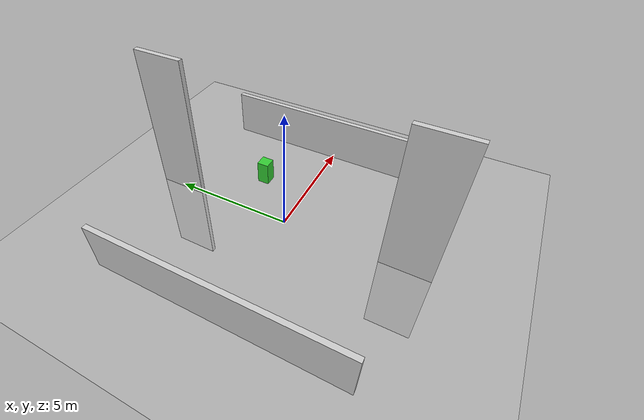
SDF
<?xml version="1.0" ?>
<sdf version="1.6">
  <world name="basic_room">
    <!-- Physics configuration -->
    <physics type="ode">
      <max_step_size>0.001</max_step_size>
      <real_time_factor>1.0</real_time_factor>
      <real_time_update_rate>1000.0</real_time_update_rate>
      <gravity>0 0 -9.8</gravity>
      <ode>
        <solver>
          <type>quick</type>
          <iters>10</iters>
          <sor>1.3</sor>
        </solver>
        <constraints>
          <cfm>0.0</cfm>
          <erp>0.2</erp>
          <contact_max_correcting_vel>100.0</contact_max_correcting_vel>
          <contact_surface_layer>0.001</contact_surface_layer>
        </constraints>
      </ode>
    </physics>

    <!-- Include standard models -->
    <include>
      <uri>model://ground_plane</uri>
    </include>

    <include>
      <uri>model://sun</uri>
    </include>

    <!-- Room walls -->
    <model name="room_wall_1">
      <static>true</static>
      <link name="wall_1_link">
        <pose>5 0 1 0 0 0</pose>
        <collision name="collision">
          <geometry>
            <box>
              <size>0.2 10 2</size>
            </box>
          </geometry>
        </collision>
        <visual name="visual">
          <geometry>
            <box>
              <size>0.2 10 2</size>
            </box>
          </geometry>
          <material>
            <ambient>0.8 0.8 0.8 1</ambient>
            <diffuse>0.8 0.8 0.8 1</diffuse>
            <specular>0.1 0.1 0.1 1</specular>
          </material>
        </visual>
      </link>
    </model>

    <model name="room_wall_2">
      <static>true</static>
      <link name="wall_2_link">
        <pose>-5 0 1 0 0 0</pose>
        <collision name="collision">
          <geometry>
            <box>
              <size>0.2 10 2</size>
            </box>
          </geometry>
        </collision>
        <visual name="visual">
          <geometry>
            <box>
              <size>0.2 10 2</size>
            </box>
          </geometry>
          <material>
            <ambient>0.8 0.8 0.8 1</ambient>
            <diffuse>0.8 0.8 0.8 1</diffuse>
            <specular>0.1 0.1 0.1 1</specular>
          </material>
        </visual>
      </link>
    </model>

    <model name="room_wall_3">
      <static>true</static>
      <link name="wall_3_link">
        <pose>0 5 1 1.5707 0 0</pose>
        <collision name="collision">
          <geometry>
            <box>
              <size>0.2 10 2</size>
            </box>
          </geometry>
        </collision>
        <visual name="visual">
          <geometry>
            <box>
              <size>0.2 10 2</size>
            </box>
          </geometry>
          <material>
            <ambient>0.8 0.8 0.8 1</ambient>
            <diffuse>0.8 0.8 0.8 1</diffuse>
            <specular>0.1 0.1 0.1 1</specular>
          </material>
        </visual>
      </link>
    </model>

    <model name="room_wall_4">
      <static>true</static>
      <link name="wall_4_link">
        <pose>0 -5 1 1.5707 0 0</pose>
        <collision name="collision">
          <geometry>
            <box>
              <size>0.2 10 2</size>
            </box>
          </geometry>
        </collision>
        <visual name="visual">
          <geometry>
            <box>
              <size>0.2 10 2</size>
            </box>
          </geometry>
          <material>
            <ambient>0.8 0.8 0.8 1</ambient>
            <diffuse>0.8 0.8 0.8 1</diffuse>
            <specular>0.1 0.1 0.1 1</specular>
          </material>
        </visual>
      </link>
    </model>

    <!-- Simple obstacle -->
    <model name="obstacle_1">
      <static>true</static>
      <pose>2 2 0.5 0 0 0</pose>
      <link name="obstacle_1_link">
        <collision name="collision">
          <geometry>
            <box>
              <size>0.5 0.5 1</size>
            </box>
          </geometry>
        </collision>
        <visual name="visual">
          <geometry>
            <box>
              <size>0.5 0.5 1</size>
            </box>
          </geometry>
          <material>
            <ambient>0.2 0.8 0.2 1</ambient>
            <diffuse>0.2 0.8 0.2 1</diffuse>
            <specular>0.1 0.1 0.1 1</specular>
          </material>
        </visual>
      </link>
    </model>

    <!-- Lighting configuration -->
    <light name='spotlight' type='spot'>
      <pose>0 0 5 0 0 0</pose>
      <diffuse>1 1 1 1</diffuse>
      <specular>0.5 0.5 0.5 1</specular>
      <attenuation>
        <range>10</range>
        <constant>0.9</constant>
        <linear>0.01</linear>
        <quadratic>0.001</quadratic>
      </attenuation>
      <direction>-0.5 0.1 -0.9</direction>
      <spot>
        <inner_angle>0.1</inner_angle>
        <outer_angle>0.5</outer_angle>
        <falloff>10</falloff>
      </spot>
    </light>
  </world>
</sdf>
